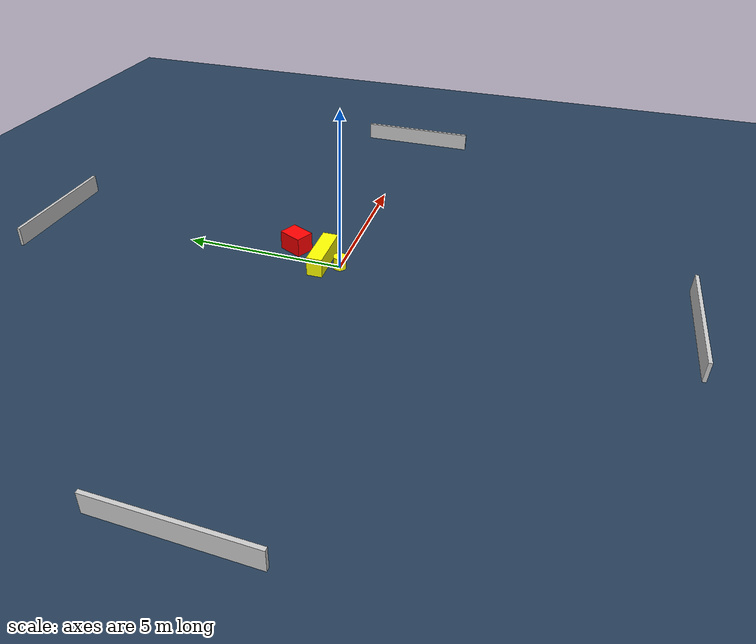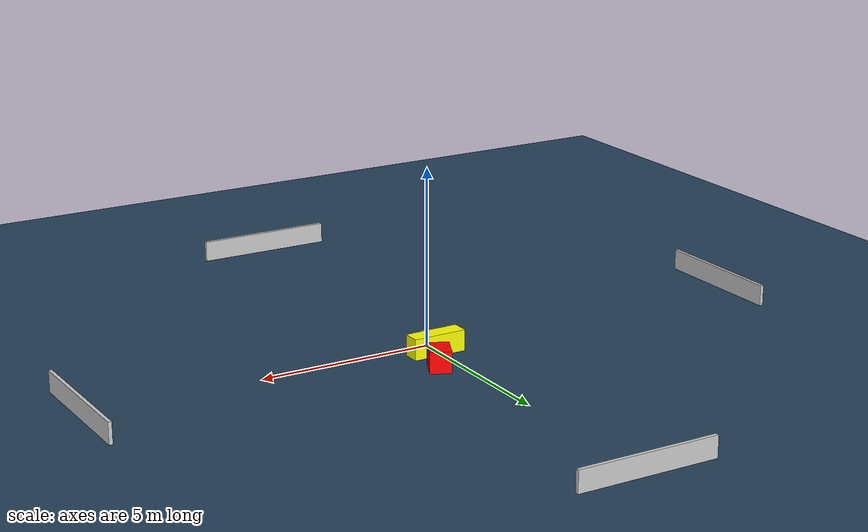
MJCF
<?xml version="1.0" ?>
<mujoco model="generated_environment">
  <option timestep="0.01" integrator="RK4" cone="elliptic"/>
  <default>
    <geom density="1"/>
  </default>
  <asset>
    <texture builtin="gradient" height="3072" name="skybox" rgb1="0.3 0.5 0.7" rgb2="0 0 0" type="skybox" width="512"/>
    <texture builtin="checker" height="300" name="groundplane" rgb1="0.2 0.3 0.4" rgb2="0.1 0.2 0.3" type="2d" width="300"/>
    <material name="groundplane" reflectance="0.2" texrepeat="5 5" texture="groundplane"/>
  </asset>
  <worldbody>
    <light dir="0 0 -1" directional="true" pos="0 0 1.5"/>
    <geom condim="3" friction="0.5 0.005 0.001" material="groundplane" name="floor" pos="0 0 0" size="0 0 0.05" type="plane"/>
    <body name="walls">
      <geom name="wall_1" condim="4" pos="-10.0 0.0 0.3" rgba="0.800000011920929 0.800000011920929 0.800000011920929 1.0" size="0.05 2.0 0.3" type="box"/>
      <geom name="wall_2" condim="4" pos="10.0 0.0 0.3" rgba="0.800000011920929 0.800000011920929 0.800000011920929 1.0" size="0.05 2.0 0.3" type="box"/>
      <geom name="wall_3" condim="4" pos="0.0 -10.0 0.3" rgba="0.800000011920929 0.800000011920929 0.800000011920929 1.0" size="2.0 0.05 0.3" type="box"/>
      <geom name="wall_4" condim="4" pos="0.0 10.0 0.3" rgba="0.800000011920929 0.800000011920929 0.800000011920929 1.0" size="2.0 0.05 0.3" type="box"/>
    </body>
    <body name="robot">
      <joint name="joint_x" type="slide" pos="0 0 0" axis="1 0 0"/>
      <joint name="joint_y" type="slide" pos="0 0 0" axis="0 1 0"/>
      <geom name="robot" type="cylinder" pos="0.0 0.0 0.2" size="0.2 0.2 0.0" mass="5.0" friction="1.0 0.005 0.0001" condim="4" rgba="1.0 1.0 0.0 1.0"/>
    </body>
    <body name="obstacle_1_movable">
      <geom name="obstacle_1_movable" condim="4" pos="0.0813636867329861 0.5800171824489803 0.3" euler="0 0 180.64701686245112" friction="0.0 0.005 0.001" rgba="1.0 1.0 0.0 1.0" size="0.7782341523265384 0.24113886716687716 0.3" type="box" mass="0.1"/>
      <joint type="free"/>
    </body>
    <body name="obstacle_2_static">
      <geom name="obstacle_2_static" condim="4" pos="0.5941749812900832 1.6317876173972456 0.3" euler="0 0 154.89129746445747" friction="0.0 0.005 0.001" rgba="1.0 0.0 0.0 1.0" size="0.29648112339161753 0.39038057495810063 0.3" type="box"/>
    </body>
  </worldbody>
  <actuator>
    <motor name="actuator_x" joint="joint_x" gear="1" ctrlrange="-1 1"/>
    <motor name="actuator_y" joint="joint_y" gear="1" ctrlrange="-1 1"/>
  </actuator>
</mujoco>
